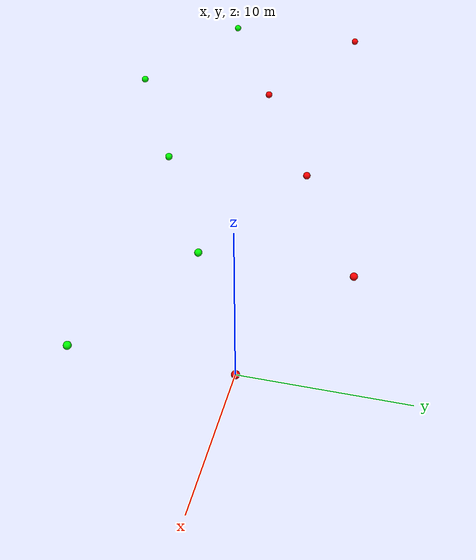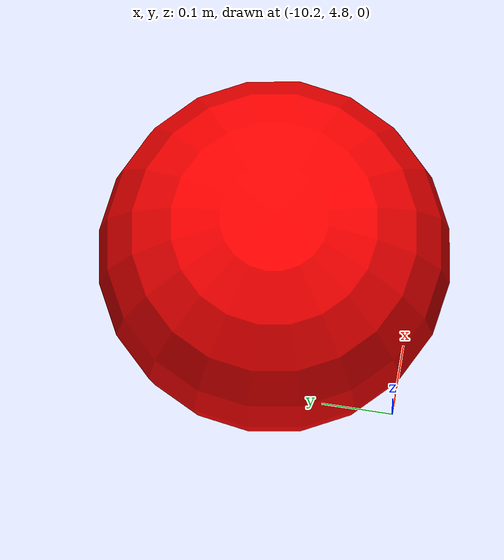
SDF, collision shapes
<?xml version="1.0"?>
<!-- Model for the short navigation course -->
<sdf version="1.6">
  <model name="short_navigation_course_0">

    <!-- Starboard_border -->
    <include>
      <name>red_bound_0</name>
      <pose>0 0 0 0 0 0</pose>
      <uri>model://mb_round_buoy_red</uri>
      <plugin name="vrx::PolyhedraBuoyancyDrag"
              filename="libPolyhedraBuoyancyDrag.so">
        <fluid_density>1000</fluid_density>
        <fluid_level>0.0</fluid_level>
        <linear_drag>75.0</linear_drag>
        <angular_drag>2.0</angular_drag>
        <buoyancy name="collision_outer">
          <link_name>link</link_name>
          <pose>0 0 0 0 0 0</pose>
          <geometry>
            <sphere>
              <radius>0.25</radius>
          </sphere>
          </geometry>
        </buoyancy>
        <wavefield>
          <topic>/vrx/wavefield/parameters</topic>
        </wavefield>
      </plugin>
    </include>

    <include>
      <name>red_bound_1</name>
      <pose>-10 5 0 0 0 0</pose>
      <uri>model://mb_round_buoy_red</uri>
      <plugin name="vrx::PolyhedraBuoyancyDrag"
              filename="libPolyhedraBuoyancyDrag.so">
        <fluid_density>1000</fluid_density>
        <fluid_level>0.0</fluid_level>
        <linear_drag>75.0</linear_drag>
        <angular_drag>2.0</angular_drag>
        <buoyancy name="collision_outer">
          <link_name>link</link_name>
          <pose>0 0 0 0 0 0</pose>
          <geometry>
            <sphere>
              <radius>0.25</radius>
          </sphere>
          </geometry>
        </buoyancy>
        <wavefield>
          <topic>/vrx/wavefield/parameters</topic>
        </wavefield>
      </plugin>
    </include>

    <include>
      <name>red_bound_2</name>
      <pose>-20 0 0 0 0 0</pose>
      <uri>model://mb_round_buoy_red</uri>
      <plugin name="vrx::PolyhedraBuoyancyDrag"
              filename="libPolyhedraBuoyancyDrag.so">
        <fluid_density>1000</fluid_density>
        <fluid_level>0.0</fluid_level>
        <linear_drag>75.0</linear_drag>
        <angular_drag>2.0</angular_drag>
        <buoyancy name="collision_outer">
          <link_name>link</link_name>
          <pose>0 0 0 0 0 0</pose>
          <geometry>
            <sphere>
              <radius>0.25</radius>
          </sphere>
          </geometry>
        </buoyancy>
        <wavefield>
          <topic>/vrx/wavefield/parameters</topic>
        </wavefield>
      </plugin>
    </include>

    <include>
      <name>red_bound_3</name>
      <pose>-30 -5 0 0 0 0</pose>
      <uri>model://mb_round_buoy_red</uri>
      <plugin name="vrx::PolyhedraBuoyancyDrag"
              filename="libPolyhedraBuoyancyDrag.so">
        <fluid_density>1000</fluid_density>
        <fluid_level>0.0</fluid_level>
        <linear_drag>75.0</linear_drag>
        <angular_drag>2.0</angular_drag>
        <buoyancy name="collision_outer">
          <link_name>link</link_name>
          <pose>0 0 0 0 0 0</pose>
          <geometry>
            <sphere>
              <radius>0.25</radius>
          </sphere>
          </geometry>
        </buoyancy>
        <wavefield>
          <topic>/vrx/wavefield/parameters</topic>
        </wavefield>
      </plugin>
    </include>

    <include>
      <name>red_bound_4</name>
      <pose>-40 0 0 0 0 0</pose>
      <uri>model://mb_round_buoy_red</uri>
      <plugin name="vrx::PolyhedraBuoyancyDrag"
              filename="libPolyhedraBuoyancyDrag.so">
        <fluid_density>1000</fluid_density>
        <fluid_level>0.0</fluid_level>
        <linear_drag>75.0</linear_drag>
        <angular_drag>2.0</angular_drag>
        <buoyancy name="collision_outer">
          <link_name>link</link_name>
          <pose>0 0 0 0 0 0</pose>
          <geometry>
            <sphere>
              <radius>0.25</radius>
          </sphere>
          </geometry>
        </buoyancy>
        <wavefield>
          <topic>/vrx/wavefield/parameters</topic>
        </wavefield>
      </plugin>
    </include>

    <!-- Port_border -->
    <include>
      <name>green_bound_0</name>
      <pose>0 -10 0 0 0 0</pose>
      <uri>model://mb_round_buoy_green</uri>
      <plugin name="vrx::PolyhedraBuoyancyDrag"
              filename="libPolyhedraBuoyancyDrag.so">
        <fluid_density>1000</fluid_density>
        <fluid_level>0.0</fluid_level>
        <linear_drag>75.0</linear_drag>
        <angular_drag>2.0</angular_drag>
        <buoyancy name="collision_outer">
          <link_name>link</link_name>
          <pose>0 0 0 0 0 0</pose>
          <geometry>
            <sphere>
              <radius>0.25</radius>
          </sphere>
          </geometry>
        </buoyancy>
        <wavefield>
          <topic>/vrx/wavefield/parameters</topic>
        </wavefield>
      </plugin>
    </include>

    <include>
      <name>green_bound_1</name>
      <pose>-10 -5 0 0 0 0</pose>
      <uri>model://mb_round_buoy_green</uri>
      <plugin name="vrx::PolyhedraBuoyancyDrag"
              filename="libPolyhedraBuoyancyDrag.so">
        <fluid_density>1000</fluid_density>
        <fluid_level>0.0</fluid_level>
        <linear_drag>75.0</linear_drag>
        <angular_drag>2.0</angular_drag>
        <buoyancy name="collision_outer">
          <link_name>link</link_name>
          <pose>0 0 0 0 0 0</pose>
          <geometry>
            <sphere>
              <radius>0.25</radius>
          </sphere>
          </geometry>
        </buoyancy>
        <wavefield>
          <topic>/vrx/wavefield/parameters</topic>
        </wavefield>
      </plugin>
    </include>

    <include>
      <name>green_bound_2</name>
      <pose>-20 -10 0 0 0 0</pose>
      <uri>model://mb_round_buoy_green</uri>
      <plugin name="vrx::PolyhedraBuoyancyDrag"
              filename="libPolyhedraBuoyancyDrag.so">
        <fluid_density>1000</fluid_density>
        <fluid_level>0.0</fluid_level>
        <linear_drag>75.0</linear_drag>
        <angular_drag>2.0</angular_drag>
        <buoyancy name="collision_outer">
          <link_name>link</link_name>
          <pose>0 0 0 0 0 0</pose>
          <geometry>
            <sphere>
              <radius>0.25</radius>
          </sphere>
          </geometry>
        </buoyancy>
        <wavefield>
          <topic>/vrx/wavefield/parameters</topic>
        </wavefield>
      </plugin>
    </include>

  <include>
      <name>green_bound_3</name>
      <pose>-30 -15 0 0 0 0</pose>
      <uri>model://mb_round_buoy_green</uri>
      <plugin name="vrx::PolyhedraBuoyancyDrag"
              filename="libPolyhedraBuoyancyDrag.so">
        <fluid_density>1000</fluid_density>
        <fluid_level>0.0</fluid_level>
        <linear_drag>75.0</linear_drag>
        <angular_drag>2.0</angular_drag>
        <buoyancy name="collision_outer">
          <link_name>link</link_name>
          <pose>0 0 0 0 0 0</pose>
          <geometry>
            <sphere>
              <radius>0.25</radius>
          </sphere>
          </geometry>
        </buoyancy>
        <wavefield>
          <topic>/vrx/wavefield/parameters</topic>
        </wavefield>
      </plugin>
    </include>

  <include>
      <name>green_bound_4</name>
      <pose>-40 -10 0 0 0 0</pose>
      <uri>model://mb_round_buoy_green</uri>
      <plugin name="vrx::PolyhedraBuoyancyDrag"
              filename="libPolyhedraBuoyancyDrag.so">
        <fluid_density>1000</fluid_density>
        <fluid_level>0.0</fluid_level>
        <linear_drag>75.0</linear_drag>
        <angular_drag>2.0</angular_drag>
        <buoyancy name="collision_outer">
          <link_name>link</link_name>
          <pose>0 0 0 0 0 0</pose>
          <geometry>
            <sphere>
              <radius>0.25</radius>
          </sphere>
          </geometry>
        </buoyancy>
        <wavefield>
          <topic>/vrx/wavefield/parameters</topic>
        </wavefield>
      </plugin>
    </include>
  </model>

</sdf>

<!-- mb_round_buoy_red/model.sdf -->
<sdf version="1.6">
  <model name="mb_round_buoy_black">
    <link name="link">
      <inertial>
        <pose>0 0 0 0 0 0</pose>
        <mass>3.5</mass>
        <inertia>
          <ixx>0.0875</ixx>
          <ixy>0</ixy>
          <ixz>0</ixz>
          <iyy>0.0875</iyy>
          <iyz>0</iyz>
          <izz>0.0875</izz>
        </inertia>
      </inertial>
      <collision name="collision">
        <geometry>
          <sphere>
            <radius>0.25</radius>
          </sphere>
        </geometry>
      </collision>
      <visual name="visual">
        <geometry>
          <mesh><uri>https://fuel.gazebosim.org/1.0/openrobotics/models/mb_round_buoy_orange/tip/files/meshes/mb_round_buoy.dae</uri></mesh>
        </geometry>
        <material>
          <ambient>1 0 0</ambient>
          <diffuse>1 0 0</diffuse>
          <specular>0 0 0 1</specular>
          <pbr>
            <metal>
              <roughness_map>https://fuel.gazebosim.org/1.0/openrobotics/models/mb_round_buoy_orange/tip/files/materials/textures/RoundBarrierBuoy_Roughness.png</roughness_map>
            </metal>
          </pbr>
        </material>
      </visual>
    </link>
  </model>
</sdf>

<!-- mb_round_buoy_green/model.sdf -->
<sdf version="1.6">
  <model name="mb_round_buoy_black">
    <link name="link">
      <inertial>
        <pose>0 0 0 0 0 0</pose>
        <mass>3.5</mass>
        <inertia>
          <ixx>0.0875</ixx>
          <ixy>0</ixy>
          <ixz>0</ixz>
          <iyy>0.0875</iyy>
          <iyz>0</iyz>
          <izz>0.0875</izz>
        </inertia>
      </inertial>
      <collision name="collision">
        <geometry>
          <sphere>
            <radius>0.25</radius>
          </sphere>
        </geometry>
      </collision>
      <visual name="visual">
        <geometry>
          <mesh><uri>https://fuel.gazebosim.org/1.0/openrobotics/models/mb_round_buoy_orange/tip/files/meshes/mb_round_buoy.dae</uri></mesh>
        </geometry>
        <material>
          <ambient>0 1 0</ambient>
          <diffuse>0 1 0</diffuse>
          <specular>0 0 0 1</specular>
          <pbr>
            <metal>
              <roughness_map>https://fuel.gazebosim.org/1.0/openrobotics/models/mb_round_buoy_orange/tip/files/materials/textures/RoundBarrierBuoy_Roughness.png</roughness_map>
            </metal>
          </pbr>
        </material>
      </visual>
    </link>
  </model>
</sdf>
